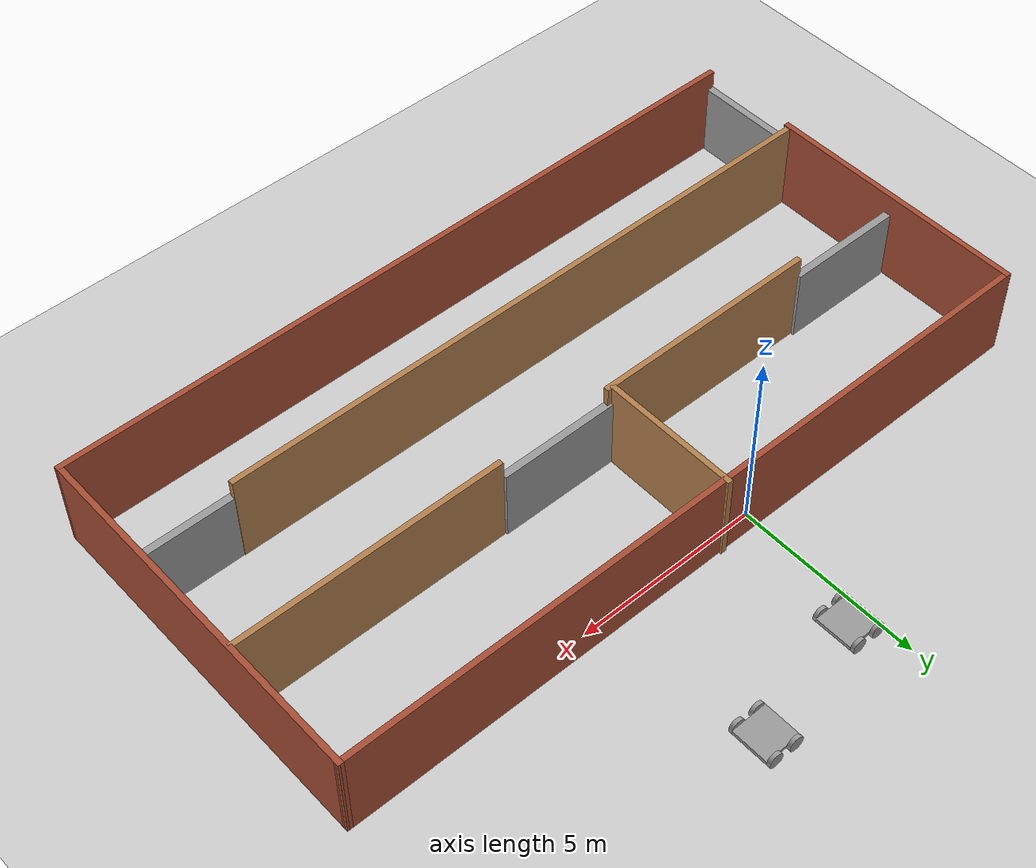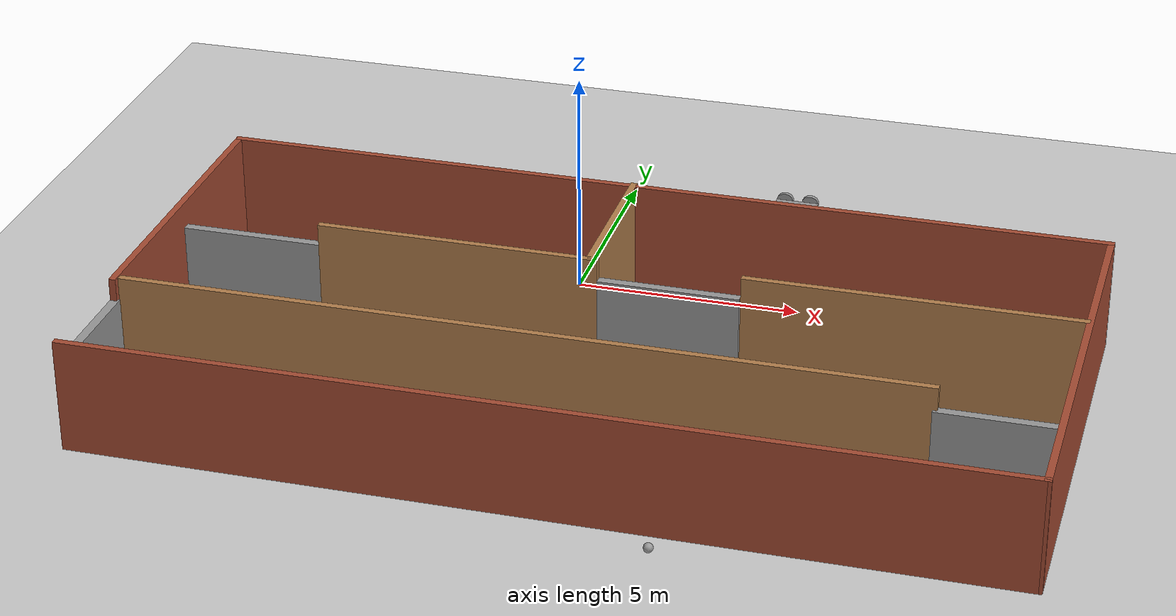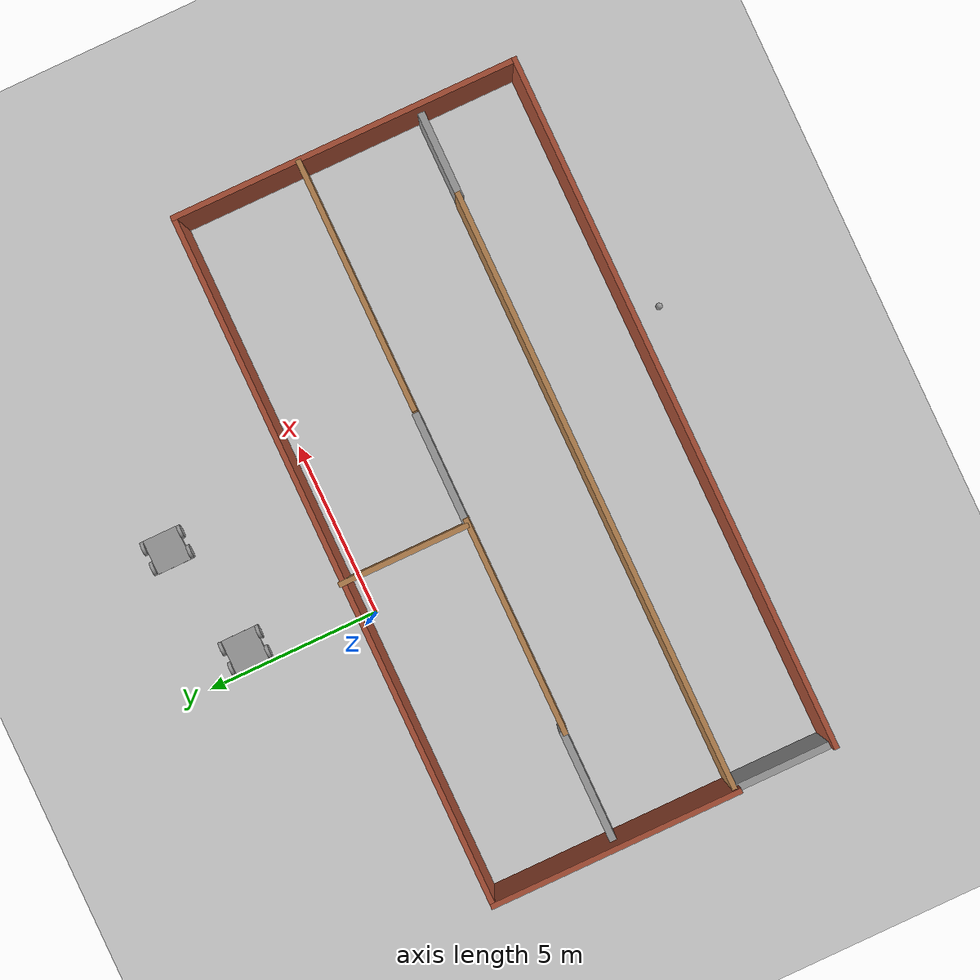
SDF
<sdf version="1.6">
 <world name="default">
  <plugin name="hello" filename="libhello.so"/>
  <light name="sun" type="directional">
   <pose>0 0 10 0 -0 0</pose>
   <diffuse>0.8 0.8 0.8 1</diffuse>
   <specular>0.2 0.2 0.2 1</specular>
   <attenuation>
    <range>1000</range>
    <constant>0.9</constant>
    <linear>0.01</linear>
    <quadratic>0.001</quadratic>
   </attenuation>
   <direction>-0.5 0.1 -0.9</direction>
  </light>
  <model name="ground_plane">
   <static>1</static>
   <link name="link">
    <collision name="collision">
     <geometry><plane><normal>0 0 1</normal><size>100 100</size></plane></geometry>
     <surface>
      <contact><collide_bitmask>65535</collide_bitmask></contact>
      <friction><ode><mu>100</mu><mu2>50</mu2></ode></friction>
     </surface>
    </collision>
    <visual name="visual">
     <cast_shadows>0</cast_shadows>
     <geometry><plane><normal>0 0 1</normal><size>100 100</size></plane></geometry>
     <material>
      <script><uri>file://media/materials/scripts/gazebo.material</uri><name>Gazebo/Grey</name></script>
     </material>
    </visual>
   </link>
  </model>
  <gravity>0 0 -9.8</gravity>
  <magnetic_field>6e-06 2.3e-05 -4.2e-05</magnetic_field>
  <atmosphere type="adiabatic"/>
  <physics name="default_physics" default="0" type="ode">
   <max_step_size>0.001</max_step_size>
   <real_time_factor>1</real_time_factor>
   <real_time_update_rate>1000</real_time_update_rate>
  </physics>
  <scene><ambient>0.4 0.4 0.4 1</ambient><background>0.7 0.7 0.7 1</background><shadows>1</shadows></scene>
  <spherical_coordinates>
   <surface_model>EARTH_WGS84</surface_model>
   <latitude_deg>0</latitude_deg>
   <longitude_deg>0</longitude_deg>
   <elevation>0</elevation>
   <heading_deg>0</heading_deg>
  </spherical_coordinates>
  <model name="robot_1">
   <link name="link_0_clone_clone">
    <pose>0.3 2.55016 0.2 1.57 -0 0</pose>
    <inertial>
     <mass>1</mass>
     <inertia><ixx>0.145833</ixx><ixy>0</ixy><ixz>0</ixz><iyy>0.145833</iyy><iyz>0</iyz><izz>0.125</izz></inertia>
    </inertial>
    <visual name="visual">
     <geometry><cylinder><radius>0.2</radius><length>0.1</length></cylinder></geometry>
     <material>
      <lighting>1</lighting>
      <script><uri>file://media/materials/scripts/gazebo.material</uri><name>Gazebo/Grey</name></script>
      <shader type="pixel"><normal_map>__default__</normal_map></shader>
      <ambient>0.3 0.3 0.3 1</ambient>
      <diffuse>0.7 0.7 0.7 1</diffuse>
      <specular>0.01 0.01 0.01 1</specular>
      <emissive>0 0 0 1</emissive>
     </material>
    </visual>
    <collision name="collision">
     <geometry><cylinder><radius>0.2</radius><length>0.1</length></cylinder></geometry>
     <surface>
      <friction>
       <ode><mu>1</mu><mu2>1</mu2><fdir1>0 0 0</fdir1><slip1>0</slip1><slip2>0</slip2></ode>
       <torsional>
        <coefficient>1</coefficient>
        <patch_radius>0</patch_radius>
        <surface_radius>0</surface_radius>
        <use_patch_radius>1</use_patch_radius>
        <ode><slip>0</slip></ode>
       </torsional>
      </friction>
      <bounce><restitution_coefficient>0</restitution_coefficient><threshold>1e+06</threshold></bounce>
      <contact>
       <collide_without_contact>0</collide_without_contact>
       <collide_without_contact_bitmask>1</collide_without_contact_bitmask>
       <collide_bitmask>1</collide_bitmask>
       <ode>
        <soft_cfm>0</soft_cfm>
        <soft_erp>0.2</soft_erp>
        <kp>1e+13</kp>
        <kd>1</kd>
        <max_vel>0.01</max_vel>
        <min_depth>0</min_depth>
       </ode>
       <bullet>
        <split_impulse>1</split_impulse>
        <split_impulse_penetration_threshold>-0.01</split_impulse_penetration_threshold>
        <soft_cfm>0</soft_cfm>
        <soft_erp>0.2</soft_erp>
        <kp>1e+13</kp>
        <kd>1</kd>
       </bullet>
      </contact>
     </surface>
    </collision>
   </link>
   <link name="link_0_clone_clone_clone">
    <pose>0.3 1.44984 0.2 1.57 -0 0</pose>
    <inertial>
     <mass>1</mass>
     <inertia><ixx>0.145833</ixx><ixy>0</ixy><ixz>0</ixz><iyy>0.145833</iyy><iyz>0</iyz><izz>0.125</izz></inertia>
    </inertial>
    <visual name="visual">
     <geometry><cylinder><radius>0.2</radius><length>0.1</length></cylinder></geometry>
     <material>
      <lighting>1</lighting>
      <script><uri>file://media/materials/scripts/gazebo.material</uri><name>Gazebo/Grey</name></script>
      <shader type="pixel"><normal_map>__default__</normal_map></shader>
      <ambient>0.3 0.3 0.3 1</ambient>
      <diffuse>0.7 0.7 0.7 1</diffuse>
      <specular>0.01 0.01 0.01 1</specular>
      <emissive>0 0 0 1</emissive>
     </material>
    </visual>
    <collision name="collision">
     <geometry><cylinder><radius>0.2</radius><length>0.1</length></cylinder></geometry>
     <surface>
      <friction>
       <ode><mu>1</mu><mu2>1</mu2><fdir1>0 0 0</fdir1><slip1>0</slip1><slip2>0</slip2></ode>
       <torsional>
        <coefficient>1</coefficient>
        <patch_radius>0</patch_radius>
        <surface_radius>0</surface_radius>
        <use_patch_radius>1</use_patch_radius>
        <ode><slip>0</slip></ode>
       </torsional>
      </friction>
      <bounce><restitution_coefficient>0</restitution_coefficient><threshold>1e+06</threshold></bounce>
      <contact>
       <collide_without_contact>0</collide_without_contact>
       <collide_without_contact_bitmask>1</collide_without_contact_bitmask>
       <collide_bitmask>1</collide_bitmask>
       <ode>
        <soft_cfm>0</soft_cfm>
        <soft_erp>0.2</soft_erp>
        <kp>1e+13</kp>
        <kd>1</kd>
        <max_vel>0.01</max_vel>
        <min_depth>0</min_depth>
       </ode>
       <bullet>
        <split_impulse>1</split_impulse>
        <split_impulse_penetration_threshold>-0.01</split_impulse_penetration_threshold>
        <soft_cfm>0</soft_cfm>
        <soft_erp>0.2</soft_erp>
        <kp>1e+13</kp>
        <kd>1</kd>
       </bullet>
      </contact>
     </surface>
    </collision>
   </link>
   <link name="link_0_clone_clone_clone_0">
    <pose>-0.3 2.55016 0.2 1.57 -0 0</pose>
    <inertial>
     <mass>1</mass>
     <inertia><ixx>0.145833</ixx><ixy>0</ixy><ixz>0</ixz><iyy>0.145833</iyy><iyz>0</iyz><izz>0.125</izz></inertia>
    </inertial>
    <visual name="visual">
     <geometry><cylinder><radius>0.2</radius><length>0.1</length></cylinder></geometry>
     <material>
      <lighting>1</lighting>
      <script><uri>file://media/materials/scripts/gazebo.material</uri><name>Gazebo/Grey</name></script>
      <shader type="pixel"><normal_map>__default__</normal_map></shader>
      <ambient>0.3 0.3 0.3 1</ambient>
      <diffuse>0.7 0.7 0.7 1</diffuse>
      <specular>0.01 0.01 0.01 1</specular>
      <emissive>0 0 0 1</emissive>
     </material>
    </visual>
    <collision name="collision">
     <geometry><cylinder><radius>0.2</radius><length>0.1</length></cylinder></geometry>
     <surface>
      <friction>
       <ode><mu>1</mu><mu2>1</mu2><fdir1>0 0 0</fdir1><slip1>0</slip1><slip2>0</slip2></ode>
       <torsional>
        <coefficient>1</coefficient>
        <patch_radius>0</patch_radius>
        <surface_radius>0</surface_radius>
        <use_patch_radius>1</use_patch_radius>
        <ode><slip>0</slip></ode>
       </torsional>
      </friction>
      <bounce><restitution_coefficient>0</restitution_coefficient><threshold>1e+06</threshold></bounce>
      <contact>
       <collide_without_contact>0</collide_without_contact>
       <collide_without_contact_bitmask>1</collide_without_contact_bitmask>
       <collide_bitmask>1</collide_bitmask>
       <ode>
        <soft_cfm>0</soft_cfm>
        <soft_erp>0.2</soft_erp>
        <kp>1e+13</kp>
        <kd>1</kd>
        <max_vel>0.01</max_vel>
        <min_depth>0</min_depth>
       </ode>
       <bullet>
        <split_impulse>1</split_impulse>
        <split_impulse_penetration_threshold>-0.01</split_impulse_penetration_threshold>
        <soft_cfm>0</soft_cfm>
        <soft_erp>0.2</soft_erp>
        <kp>1e+13</kp>
        <kd>1</kd>
       </bullet>
      </contact>
     </surface>
    </collision>
   </link>
   <link name="link_0_clone_clone_clone_1">
    <pose>-0.3 1.44984 0.2 1.57 -0 0</pose>
    <inertial>
     <mass>1</mass>
     <inertia><ixx>0.145833</ixx><ixy>0</ixy><ixz>0</ixz><iyy>0.145833</iyy><iyz>0</iyz><izz>0.125</izz></inertia>
    </inertial>
    <visual name="visual">
     <geometry><cylinder><radius>0.2</radius><length>0.1</length></cylinder></geometry>
     <material>
      <lighting>1</lighting>
      <script><uri>file://media/materials/scripts/gazebo.material</uri><name>Gazebo/Grey</name></script>
      <shader type="pixel"><normal_map>__default__</normal_map></shader>
      <ambient>0.3 0.3 0.3 1</ambient>
      <diffuse>0.7 0.7 0.7 1</diffuse>
      <specular>0.01 0.01 0.01 1</specular>
      <emissive>0 0 0 1</emissive>
     </material>
    </visual>
    <collision name="collision">
     <geometry><cylinder><radius>0.2</radius><length>0.1</length></cylinder></geometry>
     <surface>
      <friction>
       <ode><mu>1</mu><mu2>1</mu2><fdir1>0 0 0</fdir1><slip1>0</slip1><slip2>0</slip2></ode>
       <torsional>
        <coefficient>1</coefficient>
        <patch_radius>0</patch_radius>
        <surface_radius>0</surface_radius>
        <use_patch_radius>1</use_patch_radius>
        <ode><slip>0</slip></ode>
       </torsional>
      </friction>
      <bounce><restitution_coefficient>0</restitution_coefficient><threshold>1e+06</threshold></bounce>
      <contact>
       <collide_without_contact>0</collide_without_contact>
       <collide_without_contact_bitmask>1</collide_without_contact_bitmask>
       <collide_bitmask>1</collide_bitmask>
       <ode>
        <soft_cfm>0</soft_cfm>
        <soft_erp>0.2</soft_erp>
        <kp>1e+13</kp>
        <kd>1</kd>
        <max_vel>0.01</max_vel>
        <min_depth>0</min_depth>
       </ode>
       <bullet>
        <split_impulse>1</split_impulse>
        <split_impulse_penetration_threshold>-0.01</split_impulse_penetration_threshold>
        <soft_cfm>0</soft_cfm>
        <soft_erp>0.2</soft_erp>
        <kp>1e+13</kp>
        <kd>1</kd>
       </bullet>
      </contact>
     </surface>
    </collision>
   </link>
   <link name="link_clone">
    <pose>0 2 0.2 0 -0 0</pose>
    <inertial>
     <mass>1</mass>
     <inertia>
      <ixx>0.166667</ixx>
      <ixy>0</ixy>
      <ixz>0</ixz>
      <iyy>0.166667</iyy>
      <iyz>0</iyz>
      <izz>0.166667</izz>
     </inertia>
    </inertial>
    <visual name="visual">
     <geometry><box><size>1 1 0.1</size></box></geometry>
     <material>
      <script><name>Gazebo/Grey</name><uri>file://media/materials/scripts/gazebo.material</uri></script>
      <shader type="pixel"><normal_map>__default__</normal_map></shader>
      <ambient>0.3 0.3 0.3 1</ambient>
      <diffuse>0.7 0.7 0.7 1</diffuse>
      <specular>0.01 0.01 0.01 1</specular>
      <emissive>0 0 0 1</emissive>
     </material>
    </visual>
    <collision name="collision">
     <geometry><box><size>1 1 0.1</size></box></geometry>
     <surface>
      <friction>
       <ode><mu>1</mu><mu2>1</mu2><fdir1>0 0 0</fdir1><slip1>0</slip1><slip2>0</slip2></ode>
       <torsional>
        <coefficient>1</coefficient>
        <patch_radius>0</patch_radius>
        <surface_radius>0</surface_radius>
        <use_patch_radius>1</use_patch_radius>
        <ode><slip>0</slip></ode>
       </torsional>
      </friction>
      <bounce><restitution_coefficient>0</restitution_coefficient><threshold>1e+06</threshold></bounce>
      <contact>
       <collide_without_contact>0</collide_without_contact>
       <collide_without_contact_bitmask>1</collide_without_contact_bitmask>
       <collide_bitmask>1</collide_bitmask>
       <ode>
        <soft_cfm>0</soft_cfm>
        <soft_erp>0.2</soft_erp>
        <kp>1e+13</kp>
        <kd>1</kd>
        <max_vel>0.01</max_vel>
        <min_depth>0</min_depth>
       </ode>
       <bullet>
        <split_impulse>1</split_impulse>
        <split_impulse_penetration_threshold>-0.01</split_impulse_penetration_threshold>
        <soft_cfm>0</soft_cfm>
        <soft_erp>0.2</soft_erp>
        <kp>1e+13</kp>
        <kd>1</kd>
       </bullet>
      </contact>
     </surface>
    </collision>
   </link>
   <joint name="link_clone_JOINT_0" type="revolute">
    <parent>link_clone</parent>
    <child>link_0_clone_clone</child>
    <axis>
     <xyz>0 0 1</xyz>
     <use_parent_model_frame>0</use_parent_model_frame>
     <limit>
      <lower>-1.79769e+308</lower>
      <upper>1.79769e+308</upper>
      <effort>-1</effort>
      <velocity>-1</velocity>
     </limit>
     <dynamics>
      <spring_reference>0</spring_reference>
      <spring_stiffness>0</spring_stiffness>
      <damping>0</damping>
     </dynamics>
    </axis>
    <physics>
     <ode><limit><cfm>0</cfm><erp>0.2</erp></limit><suspension><cfm>0</cfm><erp>0.2</erp></suspension></ode>
    </physics>
   </joint>
   <joint name="link_clone_JOINT_1" type="revolute">
    <parent>link_clone</parent>
    <child>link_0_clone_clone_clone</child>
    <axis>
     <xyz>0 0 1</xyz>
     <use_parent_model_frame>0</use_parent_model_frame>
     <limit>
      <lower>-1.79769e+308</lower>
      <upper>1.79769e+308</upper>
      <effort>-1</effort>
      <velocity>-1</velocity>
     </limit>
     <dynamics>
      <spring_reference>0</spring_reference>
      <spring_stiffness>0</spring_stiffness>
      <damping>0</damping>
     </dynamics>
    </axis>
    <physics>
     <ode><limit><cfm>0</cfm><erp>0.2</erp></limit><suspension><cfm>0</cfm><erp>0.2</erp></suspension></ode>
    </physics>
   </joint>
   <joint name="link_clone_JOINT_2" type="revolute">
    <parent>link_clone</parent>
    <child>link_0_clone_clone_clone_0</child>
    <axis>
     <xyz>0 0 1</xyz>
     <use_parent_model_frame>0</use_parent_model_frame>
     <limit>
      <lower>-1.79769e+308</lower>
      <upper>1.79769e+308</upper>
      <effort>-1</effort>
      <velocity>-1</velocity>
     </limit>
     <dynamics>
      <spring_reference>0</spring_reference>
      <spring_stiffness>0</spring_stiffness>
      <damping>0</damping>
     </dynamics>
    </axis>
    <physics>
     <ode><limit><cfm>0</cfm><erp>0.2</erp></limit><suspension><cfm>0</cfm><erp>0.2</erp></suspension></ode>
    </physics>
   </joint>
   <joint name="link_clone_JOINT_3" type="revolute">
    <parent>link_clone</parent>
    <child>link_0_clone_clone_clone_1</child>
    <axis>
     <xyz>0 0 1</xyz>
     <use_parent_model_frame>0</use_parent_model_frame>
     <limit>
      <lower>-1.79769e+308</lower>
      <upper>1.79769e+308</upper>
      <effort>-1</effort>
      <velocity>-1</velocity>
     </limit>
     <dynamics>
      <spring_reference>0</spring_reference>
      <spring_stiffness>0</spring_stiffness>
      <damping>0</damping>
     </dynamics>
    </axis>
    <physics>
     <ode><limit><cfm>0</cfm><erp>0.2</erp></limit><suspension><cfm>0</cfm><erp>0.2</erp></suspension></ode>
    </physics>
   </joint>
   <static>0</static>
   <pose>0.588074 1.6542 0.000379 -3e-06 0.001131 0.003039</pose>
  </model>
  <model name="robot_1_clone">
   <link name="link_0_clone_clone">
    <pose>0.3 2.55016 0.2 1.57 -0 0</pose>
    <inertial>
     <mass>1</mass>
     <inertia><ixx>0.145833</ixx><ixy>0</ixy><ixz>0</ixz><iyy>0.145833</iyy><iyz>0</iyz><izz>0.125</izz></inertia>
    </inertial>
    <visual name="visual">
     <geometry><cylinder><radius>0.2</radius><length>0.1</length></cylinder></geometry>
     <material>
      <lighting>1</lighting>
      <script><uri>file://media/materials/scripts/gazebo.material</uri><name>Gazebo/Grey</name></script>
      <shader type="pixel"><normal_map>__default__</normal_map></shader>
      <ambient>0.3 0.3 0.3 1</ambient>
      <diffuse>0.7 0.7 0.7 1</diffuse>
      <specular>0.01 0.01 0.01 1</specular>
      <emissive>0 0 0 1</emissive>
     </material>
    </visual>
    <collision name="collision">
     <geometry><cylinder><radius>0.2</radius><length>0.1</length></cylinder></geometry>
     <surface>
      <friction>
       <ode><mu>1</mu><mu2>1</mu2><fdir1>0 0 0</fdir1><slip1>0</slip1><slip2>0</slip2></ode>
       <torsional>
        <coefficient>1</coefficient>
        <patch_radius>0</patch_radius>
        <surface_radius>0</surface_radius>
        <use_patch_radius>1</use_patch_radius>
        <ode><slip>0</slip></ode>
       </torsional>
      </friction>
      <bounce><restitution_coefficient>0</restitution_coefficient><threshold>1e+06</threshold></bounce>
      <contact>
       <collide_without_contact>0</collide_without_contact>
       <collide_without_contact_bitmask>1</collide_without_contact_bitmask>
       <collide_bitmask>1</collide_bitmask>
       <ode>
        <soft_cfm>0</soft_cfm>
        <soft_erp>0.2</soft_erp>
        <kp>1e+13</kp>
        <kd>1</kd>
        <max_vel>0.01</max_vel>
        <min_depth>0</min_depth>
       </ode>
       <bullet>
        <split_impulse>1</split_impulse>
        <split_impulse_penetration_threshold>-0.01</split_impulse_penetration_threshold>
        <soft_cfm>0</soft_cfm>
        <soft_erp>0.2</soft_erp>
        <kp>1e+13</kp>
        <kd>1</kd>
       </bullet>
      </contact>
     </surface>
    </collision>
   </link>
   <link name="link_0_clone_clone_clone">
    <pose>0.3 1.44984 0.2 1.57 -0 0</pose>
    <inertial>
     <mass>1</mass>
     <inertia><ixx>0.145833</ixx><ixy>0</ixy><ixz>0</ixz><iyy>0.145833</iyy><iyz>0</iyz><izz>0.125</izz></inertia>
    </inertial>
    <visual name="visual">
     <geometry><cylinder><radius>0.2</radius><length>0.1</length></cylinder></geometry>
     <material>
      <lighting>1</lighting>
      <script><uri>file://media/materials/scripts/gazebo.material</uri><name>Gazebo/Grey</name></script>
      <shader type="pixel"><normal_map>__default__</normal_map></shader>
      <ambient>0.3 0.3 0.3 1</ambient>
      <diffuse>0.7 0.7 0.7 1</diffuse>
      <specular>0.01 0.01 0.01 1</specular>
      <emissive>0 0 0 1</emissive>
     </material>
    </visual>
    <collision name="collision">
     <geometry><cylinder><radius>0.2</radius><length>0.1</length></cylinder></geometry>
     <surface>
      <friction>
       <ode><mu>1</mu><mu2>1</mu2><fdir1>0 0 0</fdir1><slip1>0</slip1><slip2>0</slip2></ode>
       <torsional>
        <coefficient>1</coefficient>
        <patch_radius>0</patch_radius>
        <surface_radius>0</surface_radius>
        <use_patch_radius>1</use_patch_radius>
        <ode><slip>0</slip></ode>
       </torsional>
      </friction>
      <bounce><restitution_coefficient>0</restitution_coefficient><threshold>1e+06</threshold></bounce>
      <contact>
       <collide_without_contact>0</collide_without_contact>
       <collide_without_contact_bitmask>1</collide_without_contact_bitmask>
       <collide_bitmask>1</collide_bitmask>
       <ode>
        <soft_cfm>0</soft_cfm>
        <soft_erp>0.2</soft_erp>
        <kp>1e+13</kp>
        <kd>1</kd>
        <max_vel>0.01</max_vel>
        <min_depth>0</min_depth>
       </ode>
       <bullet>
        <split_impulse>1</split_impulse>
        <split_impulse_penetration_threshold>-0.01</split_impulse_penetration_threshold>
        <soft_cfm>0</soft_cfm>
        <soft_erp>0.2</soft_erp>
        <kp>1e+13</kp>
        <kd>1</kd>
       </bullet>
      </contact>
     </surface>
    </collision>
   </link>
   <link name="link_0_clone_clone_clone_0">
    <pose>-0.3 2.55016 0.2 1.57 -0 0</pose>
    <inertial>
     <mass>1</mass>
     <inertia><ixx>0.145833</ixx><ixy>0</ixy><ixz>0</ixz><iyy>0.145833</iyy><iyz>0</iyz><izz>0.125</izz></inertia>
    </inertial>
    <visual name="visual">
     <geometry><cylinder><radius>0.2</radius><length>0.1</length></cylinder></geometry>
     <material>
      <lighting>1</lighting>
      <script><uri>file://media/materials/scripts/gazebo.material</uri><name>Gazebo/Grey</name></script>
      <shader type="pixel"><normal_map>__default__</normal_map></shader>
      <ambient>0.3 0.3 0.3 1</ambient>
      <diffuse>0.7 0.7 0.7 1</diffuse>
      <specular>0.01 0.01 0.01 1</specular>
      <emissive>0 0 0 1</emissive>
     </material>
    </visual>
    <collision name="collision">
     <geometry><cylinder><radius>0.2</radius><length>0.1</length></cylinder></geometry>
     <surface>
      <friction>
       <ode><mu>1</mu><mu2>1</mu2><fdir1>0 0 0</fdir1><slip1>0</slip1><slip2>0</slip2></ode>
       <torsional>
        <coefficient>1</coefficient>
        <patch_radius>0</patch_radius>
        <surface_radius>0</surface_radius>
        <use_patch_radius>1</use_patch_radius>
        <ode><slip>0</slip></ode>
       </torsional>
      </friction>
      <bounce><restitution_coefficient>0</restitution_coefficient><threshold>1e+06</threshold></bounce>
      <contact>
       <collide_without_contact>0</collide_without_contact>
       <collide_without_contact_bitmask>1</collide_without_contact_bitmask>
       <collide_bitmask>1</collide_bitmask>
       <ode>
        <soft_cfm>0</soft_cfm>
        <soft_erp>0.2</soft_erp>
        <kp>1e+13</kp>
        <kd>1</kd>
        <max_vel>0.01</max_vel>
        <min_depth>0</min_depth>
       </ode>
       <bullet>
        <split_impulse>1</split_impulse>
        <split_impulse_penetration_threshold>-0.01</split_impulse_penetration_threshold>
        <soft_cfm>0</soft_cfm>
        <soft_erp>0.2</soft_erp>
        <kp>1e+13</kp>
        <kd>1</kd>
       </bullet>
      </contact>
     </surface>
    </collision>
   </link>
   <link name="link_0_clone_clone_clone_1">
    <pose>-0.3 1.44984 0.2 1.57 -0 0</pose>
    <inertial>
     <mass>1</mass>
     <inertia><ixx>0.145833</ixx><ixy>0</ixy><ixz>0</ixz><iyy>0.145833</iyy><iyz>0</iyz><izz>0.125</izz></inertia>
    </inertial>
    <visual name="visual">
     <geometry><cylinder><radius>0.2</radius><length>0.1</length></cylinder></geometry>
     <material>
      <lighting>1</lighting>
      <script><uri>file://media/materials/scripts/gazebo.material</uri><name>Gazebo/Grey</name></script>
      <shader type="pixel"><normal_map>__default__</normal_map></shader>
      <ambient>0.3 0.3 0.3 1</ambient>
      <diffuse>0.7 0.7 0.7 1</diffuse>
      <specular>0.01 0.01 0.01 1</specular>
      <emissive>0 0 0 1</emissive>
     </material>
    </visual>
    <collision name="collision">
     <geometry><cylinder><radius>0.2</radius><length>0.1</length></cylinder></geometry>
     <surface>
      <friction>
       <ode><mu>1</mu><mu2>1</mu2><fdir1>0 0 0</fdir1><slip1>0</slip1><slip2>0</slip2></ode>
       <torsional>
        <coefficient>1</coefficient>
        <patch_radius>0</patch_radius>
        <surface_radius>0</surface_radius>
        <use_patch_radius>1</use_patch_radius>
        <ode><slip>0</slip></ode>
       </torsional>
      </friction>
      <bounce><restitution_coefficient>0</restitution_coefficient><threshold>1e+06</threshold></bounce>
      <contact>
       <collide_without_contact>0</collide_without_contact>
       <collide_without_contact_bitmask>1</collide_without_contact_bitmask>
       <collide_bitmask>1</collide_bitmask>
       <ode>
        <soft_cfm>0</soft_cfm>
        <soft_erp>0.2</soft_erp>
        <kp>1e+13</kp>
        <kd>1</kd>
        <max_vel>0.01</max_vel>
        <min_depth>0</min_depth>
       </ode>
       <bullet>
        <split_impulse>1</split_impulse>
        <split_impulse_penetration_threshold>-0.01</split_impulse_penetration_threshold>
        <soft_cfm>0</soft_cfm>
        <soft_erp>0.2</soft_erp>
        <kp>1e+13</kp>
        <kd>1</kd>
       </bullet>
      </contact>
     </surface>
    </collision>
   </link>
   <link name="link_clone">
    <pose>0 2 0.2 0 -0 0</pose>
    <inertial>
     <mass>1</mass>
     <inertia>
      <ixx>0.166667</ixx>
      <ixy>0</ixy>
      <ixz>0</ixz>
      <iyy>0.166667</iyy>
      <iyz>0</iyz>
      <izz>0.166667</izz>
     </inertia>
    </inertial>
    <visual name="visual">
     <geometry><box><size>1 1 0.1</size></box></geometry>
     <material>
      <script><name>Gazebo/Grey</name><uri>file://media/materials/scripts/gazebo.material</uri></script>
      <shader type="pixel"><normal_map>__default__</normal_map></shader>
      <ambient>0.3 0.3 0.3 1</ambient>
      <diffuse>0.7 0.7 0.7 1</diffuse>
      <specular>0.01 0.01 0.01 1</specular>
      <emissive>0 0 0 1</emissive>
     </material>
    </visual>
    <collision name="collision">
     <geometry><box><size>1 1 0.1</size></box></geometry>
     <surface>
      <friction>
       <ode><mu>1</mu><mu2>1</mu2><fdir1>0 0 0</fdir1><slip1>0</slip1><slip2>0</slip2></ode>
       <torsional>
        <coefficient>1</coefficient>
        <patch_radius>0</patch_radius>
        <surface_radius>0</surface_radius>
        <use_patch_radius>1</use_patch_radius>
        <ode><slip>0</slip></ode>
       </torsional>
      </friction>
      <bounce><restitution_coefficient>0</restitution_coefficient><threshold>1e+06</threshold></bounce>
      <contact>
       <collide_without_contact>0</collide_without_contact>
       <collide_without_contact_bitmask>1</collide_without_contact_bitmask>
       <collide_bitmask>1</collide_bitmask>
       <ode>
        <soft_cfm>0</soft_cfm>
        <soft_erp>0.2</soft_erp>
        <kp>1e+13</kp>
        <kd>1</kd>
        <max_vel>0.01</max_vel>
        <min_depth>0</min_depth>
       </ode>
       <bullet>
        <split_impulse>1</split_impulse>
        <split_impulse_penetration_threshold>-0.01</split_impulse_penetration_threshold>
        <soft_cfm>0</soft_cfm>
        <soft_erp>0.2</soft_erp>
        <kp>1e+13</kp>
        <kd>1</kd>
       </bullet>
      </contact>
     </surface>
    </collision>
   </link>
   <joint name="link_clone_JOINT_0" type="revolute">
    <parent>link_clone</parent>
    <child>link_0_clone_clone</child>
    <axis>
     <xyz>0 0 1</xyz>
     <use_parent_model_frame>0</use_parent_model_frame>
     <limit>
      <lower>-1.79769e+308</lower>
      <upper>1.79769e+308</upper>
      <effort>-1</effort>
      <velocity>-1</velocity>
     </limit>
     <dynamics>
      <spring_reference>0</spring_reference>
      <spring_stiffness>0</spring_stiffness>
      <damping>0</damping>
     </dynamics>
    </axis>
    <physics>
     <ode><limit><cfm>0</cfm><erp>0.2</erp></limit><suspension><cfm>0</cfm><erp>0.2</erp></suspension></ode>
    </physics>
   </joint>
   <joint name="link_clone_JOINT_1" type="revolute">
    <parent>link_clone</parent>
    <child>link_0_clone_clone_clone</child>
    <axis>
     <xyz>0 0 1</xyz>
     <use_parent_model_frame>0</use_parent_model_frame>
     <limit>
      <lower>-1.79769e+308</lower>
      <upper>1.79769e+308</upper>
      <effort>-1</effort>
      <velocity>-1</velocity>
     </limit>
     <dynamics>
      <spring_reference>0</spring_reference>
      <spring_stiffness>0</spring_stiffness>
      <damping>0</damping>
     </dynamics>
    </axis>
    <physics>
     <ode><limit><cfm>0</cfm><erp>0.2</erp></limit><suspension><cfm>0</cfm><erp>0.2</erp></suspension></ode>
    </physics>
   </joint>
   <joint name="link_clone_JOINT_2" type="revolute">
    <parent>link_clone</parent>
    <child>link_0_clone_clone_clone_0</child>
    <axis>
     <xyz>0 0 1</xyz>
     <use_parent_model_frame>0</use_parent_model_frame>
     <limit>
      <lower>-1.79769e+308</lower>
      <upper>1.79769e+308</upper>
      <effort>-1</effort>
      <velocity>-1</velocity>
     </limit>
     <dynamics>
      <spring_reference>0</spring_reference>
      <spring_stiffness>0</spring_stiffness>
      <damping>0</damping>
     </dynamics>
    </axis>
    <physics>
     <ode><limit><cfm>0</cfm><erp>0.2</erp></limit><suspension><cfm>0</cfm><erp>0.2</erp></suspension></ode>
    </physics>
   </joint>
   <joint name="link_clone_JOINT_3" type="revolute">
    <parent>link_clone</parent>
    <child>link_0_clone_clone_clone_1</child>
    <axis>
     <xyz>0 0 1</xyz>
     <use_parent_model_frame>0</use_parent_model_frame>
     <limit>
      <lower>-1.79769e+308</lower>
      <upper>1.79769e+308</upper>
      <effort>-1</effort>
      <velocity>-1</velocity>
     </limit>
     <dynamics>
      <spring_reference>0</spring_reference>
      <spring_stiffness>0</spring_stiffness>
      <damping>0</damping>
     </dynamics>
    </axis>
    <physics>
     <ode><limit><cfm>0</cfm><erp>0.2</erp></limit><suspension><cfm>0</cfm><erp>0.2</erp></suspension></ode>
    </physics>
   </joint>
   <static>0</static>
   <pose>3.96124 2.43912 0.00049 -0 0.001502 0.003044</pose>
  </model>
  <model name="building2">
   <pose>1.76356 -4.63758 0 0 -0 0</pose>
   <link name="Door_0">
    <collision name="Door_0_Collision">
     <geometry><box><size>2.75243 0.2 2</size></box></geometry>
     <pose>0 0 1 0 -0 0</pose>
    </collision>
    <visual name="Door_0_Visual">
     <pose>0 0 1 0 -0 0</pose>
     <geometry><box><size>2.75243 0.2 2</size></box></geometry>
     <material>
      <script><uri>file://media/materials/scripts/gazebo.material</uri><name>Gazebo/Grey</name></script>
     </material>
    </visual>
    <pose>-9.91507 -3.57085 0 0 0 -1.5708</pose>
   </link>
   <link name="Door_1">
    <collision name="Door_1_Collision">
     <geometry><box><size>2.4665 0.2 2</size></box></geometry>
     <pose>0 0 1 0 -0 0</pose>
    </collision>
    <visual name="Door_1_Visual">
     <pose>0 0 1 0 -0 0</pose>
     <geometry><box><size>2.4665 0.2 2</size></box></geometry>
     <material>
      <script><uri>file://media/materials/scripts/gazebo.material</uri><name>Gazebo/Grey</name></script>
     </material>
    </visual>
    <pose>8.54971 -2.14413 0 0 -0 0</pose>
   </link>
   <link name="Door_4">
    <collision name="Door_4_Collision">
     <geometry><box><size>3.22618 0.2 2</size></box></geometry>
     <pose>0 0 1 0 -0 0</pose>
    </collision>
    <visual name="Door_4_Visual">
     <pose>0 0 1 0 -0 0</pose>
     <geometry><box><size>3.22618 0.2 2</size></box></geometry>
     <material>
      <script><uri>file://media/materials/scripts/gazebo.material</uri><name>Gazebo/Grey</name></script>
     </material>
    </visual>
    <pose>1.04262 1.34073 0 0 -0 0</pose>
   </link>
   <link name="Door_5">
    <collision name="Door_5_Collision">
     <geometry><box><size>3.1912 0.2 2</size></box></geometry>
     <pose>0 0 1 0 -0 0</pose>
    </collision>
    <visual name="Door_5_Visual">
     <pose>0 0 1 0 -0 0</pose>
     <geometry><box><size>3.1912 0.2 2</size></box></geometry>
     <material>
      <script><uri>file://media/materials/scripts/gazebo.material</uri><name>Gazebo/Grey</name></script>
     </material>
    </visual>
    <pose>-8.20962 1.35822 0 0 -0 0</pose>
   </link>
   <link name="Wall_1">
    <collision name="Wall_1_Collision">
     <geometry><box><size>7.25 0.15 2.5</size></box></geometry>
     <pose>0 0 1.25 0 -0 0</pose>
    </collision>
    <visual name="Wall_1_Visual">
     <pose>0 0 1.25 0 -0 0</pose>
     <geometry><box><size>7.25 0.15 2.5</size></box></geometry>
     <material>
      <script><uri>file://media/materials/scripts/gazebo.material</uri><name>Gazebo/Bricks</name></script>
      <ambient>1 1 1 1</ambient>
     </material>
     <meta><layer>0</layer></meta>
    </visual>
    <pose>-9.93256 1.36658 0 0 0 -1.5708</pose>
   </link>
   <link name="Wall_14">
    <collision name="Wall_14_Collision">
     <geometry><box><size>3.75 0.15 2.5</size></box></geometry>
     <pose>0 0 1.25 0 -0 0</pose>
    </collision>
    <visual name="Wall_14_Visual">
     <pose>0 0 1.25 0 -0 0</pose>
     <geometry><box><size>3.75 0.15 2.5</size></box></geometry>
     <material>
      <script><uri>file://media/materials/scripts/gazebo.material</uri><name>Gazebo/Wood</name></script>
      <ambient>1 0.764706 0.305882 1</ambient>
     </material>
     <meta><layer>0</layer></meta>
    </visual>
    <pose>-0.613557 3.17358 0 0 0 -1.5708</pose>
   </link>
   <link name="Wall_16">
    <collision name="Wall_16_Collision">
     <geometry><box><size>19.9911 0.15 2.5</size></box></geometry>
     <pose>0 0 1.25 0 -0 0</pose>
    </collision>
    <visual name="Wall_16_Visual">
     <pose>0 0 1.25 0 -0 0</pose>
     <geometry><box><size>19.9911 0.15 2.5</size></box></geometry>
     <material>
      <script><uri>file://media/materials/scripts/gazebo.material</uri><name>Gazebo/Bricks</name></script>
      <ambient>1 1 1 1</ambient>
     </material>
     <meta><layer>0</layer></meta>
    </visual>
    <pose>-0.003057 -4.95342 0 0 -0 0.002016</pose>
   </link>
   <link name="Wall_20">
    <collision name="Wall_20_Collision">
     <geometry><box><size>17.25 0.15 2.5</size></box></geometry>
     <pose>0 0 1.25 0 -0 0</pose>
    </collision>
    <visual name="Wall_20_Visual">
     <pose>0 0 1.25 0 -0 0</pose>
     <geometry><box><size>17.25 0.15 2.5</size></box></geometry>
     <material>
      <script><uri>file://media/materials/scripts/gazebo.material</uri><name>Gazebo/Wood</name></script>
      <ambient>0.996078 0.47451 0.0196078 1</ambient>
     </material>
     <meta><layer>0</layer></meta>
    </visual>
    <pose>-1.21056 -2.10442 0 0 -0 3.14159</pose>
   </link>
   <link name="Wall_22">
    <collision name="Wall_22_Collision">
     <geometry><box><size>6.25 0.15 2.5</size></box></geometry>
     <pose>0 0 1.25 0 -0 0</pose>
    </collision>
    <visual name="Wall_22_Visual">
     <pose>0 0 1.25 0 -0 0</pose>
     <geometry><box><size>6.25 0.15 2.5</size></box></geometry>
     <material>
      <script><uri>file://media/materials/scripts/gazebo.material</uri><name>Gazebo/Wood</name></script>
      <ambient>1 0.764706 0.305882 1</ambient>
     </material>
     <meta><layer>0</layer></meta>
    </visual>
    <pose>-3.55056 1.30557 0 0 -0 0</pose>
   </link>
   <link name="Wall_24">
    <collision name="Wall_24_Collision">
     <geometry><box><size>7.25 0.15 2.5</size></box></geometry>
     <pose>0 0 1.25 0 -0 0</pose>
    </collision>
    <visual name="Wall_24_Visual">
     <pose>0 0 1.25 0 -0 0</pose>
     <geometry><box><size>7.25 0.15 2.5</size></box></geometry>
     <material>
      <script><uri>file://media/materials/scripts/gazebo.material</uri><name>Gazebo/Wood</name></script>
      <ambient>1 0.764706 0.305882 1</ambient>
     </material>
     <meta><layer>0</layer></meta>
    </visual>
    <pose>6.30644 1.32357 0 0 -0 0</pose>
   </link>
   <link name="Wall_5">
    <collision name="Wall_5_Collision">
     <geometry><box><size>10 0.15 2.5</size></box></geometry>
     <pose>0 0 1.25 0 -0 0</pose>
    </collision>
    <visual name="Wall_5_Visual">
     <pose>0 0 1.25 0 -0 0</pose>
     <geometry><box><size>10 0.15 2.5</size></box></geometry>
     <material>
      <script><uri>file://media/materials/scripts/gazebo.material</uri><name>Gazebo/Bricks</name></script>
      <ambient>1 1 1 1</ambient>
     </material>
     <meta><layer>0</layer></meta>
    </visual>
    <pose>9.92494 -0.008425 0 0 -0 1.56927</pose>
   </link>
   <link name="Wall_6">
    <collision name="Wall_6_Collision">
     <geometry><box><size>20 0.15 2.5</size></box></geometry>
     <pose>0 0 1.25 0 -0 0</pose>
    </collision>
    <visual name="Wall_6_Visual">
     <pose>0 0 1.25 0 -0 0</pose>
     <geometry><box><size>20 0.15 2.5</size></box></geometry>
     <material>
      <script><uri>file://media/materials/scripts/gazebo.material</uri><name>Gazebo/Bricks</name></script>
      <ambient>1 1 1 1</ambient>
     </material>
     <meta><layer>0</layer></meta>
    </visual>
    <pose>0.007443 4.91657 0 0 -0 3.14159</pose>
   </link>
   <static>1</static>
  </model>
  <model name="my_ball">
   <link name="link_0">
    <inertial>
     <mass>1</mass>
     <inertia><ixx>0.1</ixx><ixy>0</ixy><ixz>0</ixz><iyy>0.1</iyy><iyz>0</iyz><izz>0.1</izz></inertia>
    </inertial>
    <visual name="visual">
     <geometry><sphere><radius>0.1</radius></sphere></geometry>
     <material>
      <lighting>1</lighting>
      <script><uri>file://media/materials/scripts/gazebo.material</uri><name>Gazebo/Grey</name></script>
      <shader type="pixel"><normal_map>__default__</normal_map></shader>
      <ambient>1 1 1 1</ambient>
      <diffuse>1 1 1 1</diffuse>
      <specular>1 1 1 1</specular>
      <emissive>1 1 1 1</emissive>
     </material>
    </visual>
    <collision name="collision">
     <geometry><sphere><radius>0.1</radius></sphere></geometry>
     <surface>
      <friction>
       <ode><mu>1</mu><mu2>1</mu2><fdir1>0 0 0</fdir1><slip1>0</slip1><slip2>0</slip2></ode>
       <torsional>
        <coefficient>1</coefficient>
        <patch_radius>0</patch_radius>
        <surface_radius>0</surface_radius>
        <use_patch_radius>1</use_patch_radius>
        <ode><slip>0</slip></ode>
       </torsional>
      </friction>
      <bounce><restitution_coefficient>0</restitution_coefficient><threshold>1e+06</threshold></bounce>
      <contact>
       <collide_without_contact>0</collide_without_contact>
       <collide_without_contact_bitmask>1</collide_without_contact_bitmask>
       <collide_bitmask>1</collide_bitmask>
       <ode>
        <soft_cfm>0</soft_cfm>
        <soft_erp>0.2</soft_erp>
        <kp>1e+13</kp>
        <kd>1</kd>
        <max_vel>0.01</max_vel>
        <min_depth>0</min_depth>
       </ode>
       <bullet>
        <split_impulse>1</split_impulse>
        <split_impulse_penetration_threshold>-0.01</split_impulse_penetration_threshold>
        <soft_cfm>0</soft_cfm>
        <soft_erp>0.2</soft_erp>
        <kp>1e+13</kp>
        <kd>1</kd>
       </bullet>
      </contact>
     </surface>
    </collision>
   </link>
   <static>0</static>
   <pose>4.32391 -10.5176 0.318237 0 -0 0</pose>
  </model>
 </world>
</sdf>
